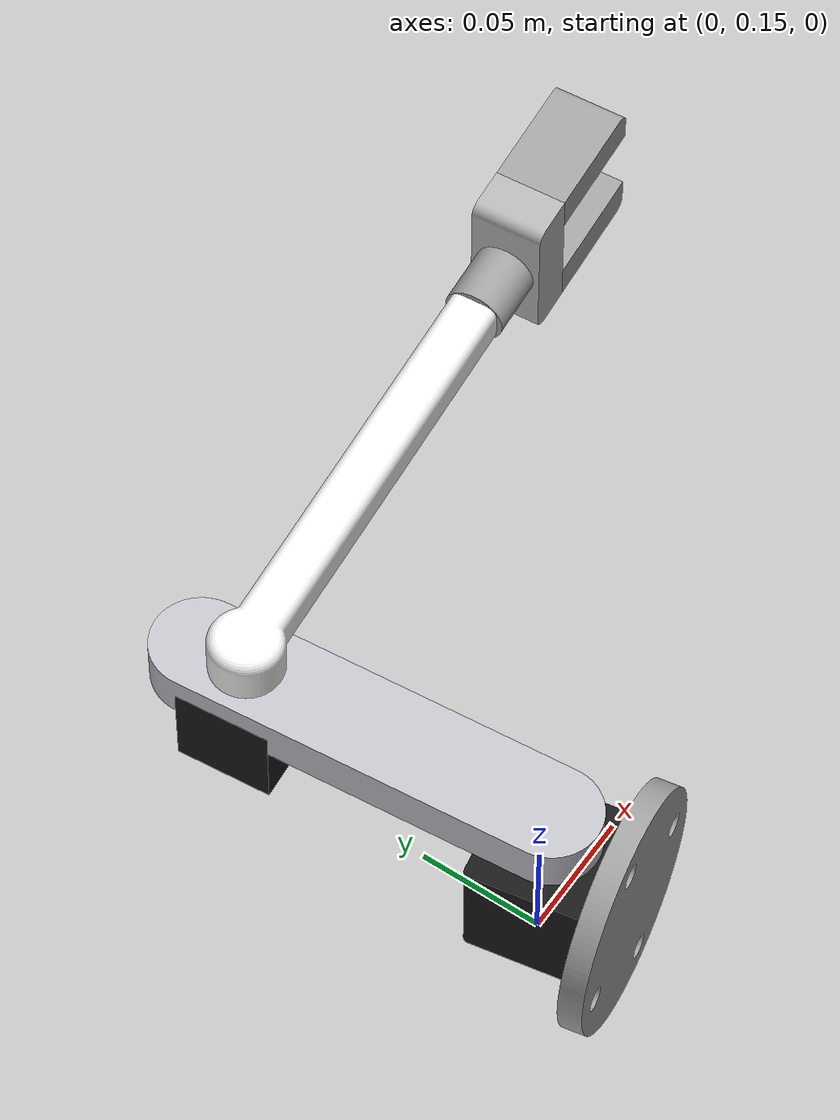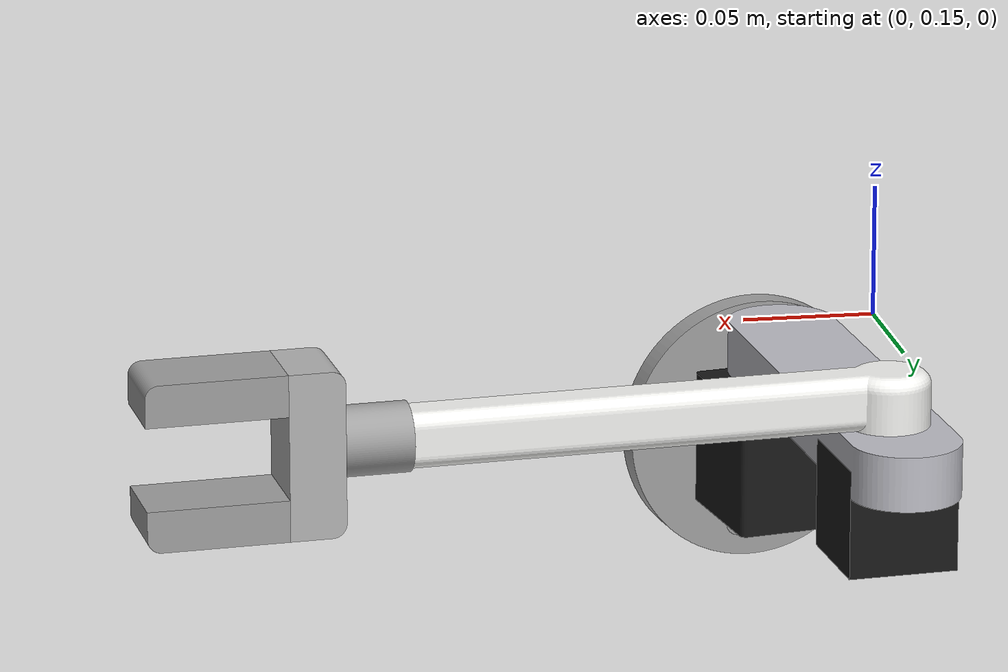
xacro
<?xml version="1.0" ?>
<robot name="arm" xmlns:xacro="http://www.ros.org/wiki/xacro">

<xacro:include filename="$(find arm_description)/urdf/materials.xacro" />
<xacro:include filename="$(find arm_description)/urdf/arm.trans" />
<xacro:include filename="$(find arm_description)/urdf/arm.gazebo" />
<link name="base_link">
  <inertial>
    <origin rpy="0 0 0" xyz="0.045004269594343685 0.14080314103611938 -0.04418171946780986"/>
    <mass value="0.5918760559363156"/>
    <inertia ixx="0.000384" ixy="-6.2e-05" ixz="0.0" iyy="0.000725" iyz="0.0" izz="0.000373"/>
  </inertial>
  <visual>
    <origin rpy="0 0 0" xyz="0 0 0"/>
    <geometry>
      <mesh filename="package://arm_description/meshes/base_link.stl" scale="0.001 0.001 0.001"/>
    </geometry>
    <material name="steel_satin"/>
  </visual>
  <collision>
    <origin rpy="0 0 0" xyz="0 0 0"/>
    <geometry>
      <mesh filename="package://arm_description/meshes/base_link.stl" scale="0.001 0.001 0.001"/>
    </geometry>
  </collision>
</link>

<link name="shoulder_v7_1">
  <inertial>
    <origin rpy="0 0 0" xyz="0.03979482426435912 0.17034737362648983 -0.05392380300504991"/>
    <mass value="0.17928408437421925"/>
    <inertia ixx="7.5e-05" ixy="-0.0" ixz="-0.0" iyy="7.5e-05" iyz="-0.0" izz="7.4e-05"/>
  </inertial>
  <visual>
    <origin rpy="0 0 0" xyz="-0.0 -0.0 -0.01"/>
    <geometry>
      <mesh filename="package://arm_description/meshes/shoulder_v7_1.stl" scale="0.001 0.001 0.001"/>
    </geometry>
    <material name="plastic_glossy_black"/>
  </visual>
  <collision>
    <origin rpy="0 0 0" xyz="-0.0 -0.0 -0.01"/>
    <geometry>
      <mesh filename="package://arm_description/meshes/shoulder_v7_1.stl" scale="0.001 0.001 0.001"/>
    </geometry>
  </collision>
</link>

<link name="elbow_v12_1">
  <inertial>
    <origin rpy="0 0 0" xyz="0.03384303335064815 0.2433766550652839 -0.003553644285581166"/>
    <mass value="0.13164405591331413"/>
    <inertia ixx="0.000352" ixy="2.9e-05" ixz="0.0" iyy="2.4e-05" iyz="-5e-06" izz="0.000367"/>
  </inertial>
  <visual>
    <origin rpy="0 0 0" xyz="-0.0 0.005 -0.0"/>
    <geometry>
      <mesh filename="package://arm_description/meshes/elbow_v12_1.stl" scale="0.001 0.001 0.001"/>
    </geometry>
    <material name="polystyrene"/>
  </visual>
  <collision>
    <origin rpy="0 0 0" xyz="-0.0 0.005 -0.0"/>
    <geometry>
      <mesh filename="package://arm_description/meshes/elbow_v12_1.stl" scale="0.001 0.001 0.001"/>
    </geometry>
  </collision>
</link>

<link name="stepper_motor_v4_1">
  <inertial>
    <origin rpy="0 0 0" xyz="-4.223186543181323e-07 -3.153265071831335e-07 -0.019816764371663013"/>
    <mass value="0.09175959619142068"/>
    <inertia ixx="2.5e-05" ixy="0.0" ixz="-0.0" iyy="2.5e-05" iyz="0.0" izz="2.4e-05"/>
  </inertial>
  <visual>
    <origin rpy="0 0 0" xyz="-0.028465 -0.299853 0.004182"/>
    <geometry>
      <mesh filename="package://arm_description/meshes/stepper_motor_v4_1.stl" scale="0.001 0.001 0.001"/>
    </geometry>
    <material name="plastic_glossy_black"/>
  </visual>
  <collision>
    <origin rpy="0 0 0" xyz="-0.028465 -0.299853 0.004182"/>
    <geometry>
      <mesh filename="package://arm_description/meshes/stepper_motor_v4_1.stl" scale="0.001 0.001 0.001"/>
    </geometry>
  </collision>
</link>

<link name="fist_v8_1">
  <inertial>
    <origin rpy="0 0 0" xyz="0.08545072429578468 0.2965880967939642 0.015786321919730437"/>
    <mass value="0.10436047216159268"/>
    <inertia ixx="9e-06" ixy="-2.8e-05" ixz="-0.0" iyy="0.000325" iyz="-0.0" izz="0.000328"/>
  </inertial>
  <visual>
    <origin rpy="0 0 0" xyz="-0.02 -0.01 -0.0"/>
    <geometry>
      <mesh filename="package://arm_description/meshes/fist_v8_1.stl" scale="0.001 0.001 0.001"/>
    </geometry>
    <material name="plastic_glossy_white"/>
  </visual>
  <collision>
    <origin rpy="0 0 0" xyz="-0.02 -0.01 -0.0"/>
    <geometry>
      <mesh filename="package://arm_description/meshes/fist_v8_1.stl" scale="0.001 0.001 0.001"/>
    </geometry>
  </collision>
</link>

<link name="left_claw_v2_1">
  <inertial>
    <origin rpy="0 0 0" xyz="0.02473385694239269 0.0021638438876491195 -4.570971836950072e-05"/>
    <mass value="0.17536153168700247"/>
    <inertia ixx="1.7e-05" ixy="-2e-06" ixz="0.0" iyy="3.9e-05" iyz="0.0" izz="4.9e-05"/>
  </inertial>
  <visual>
    <origin rpy="0 0 0" xyz="-0.247627 -0.319027 -0.038318"/>
    <geometry>
      <mesh filename="package://arm_description/meshes/left_claw_v2_1.stl" scale="0.001 0.001 0.001"/>
    </geometry>
    <material name="steel_satin"/>
  </visual>
  <collision>
    <origin rpy="0 0 0" xyz="-0.247627 -0.319027 -0.038318"/>
    <geometry>
      <mesh filename="package://arm_description/meshes/left_claw_v2_1.stl" scale="0.001 0.001 0.001"/>
    </geometry>
  </collision>
</link>

<link name="right_claw_v2_1">
  <inertial>
    <origin rpy="0 0 0" xyz="0.0247338569423923 0.0021638438876509514 4.627078276895746e-05"/>
    <mass value="0.17536153168700244"/>
    <inertia ixx="1.7e-05" ixy="-2e-06" ixz="-0.0" iyy="3.9e-05" iyz="-0.0" izz="4.9e-05"/>
  </inertial>
  <visual>
    <origin rpy="0 0 0" xyz="-0.247627 -0.319027 0.006682"/>
    <geometry>
      <mesh filename="package://arm_description/meshes/right_claw_v2_1.stl" scale="0.001 0.001 0.001"/>
    </geometry>
    <material name="steel_satin"/>
  </visual>
  <collision>
    <origin rpy="0 0 0" xyz="-0.247627 -0.319027 0.006682"/>
    <geometry>
      <mesh filename="package://arm_description/meshes/right_claw_v2_1.stl" scale="0.001 0.001 0.001"/>
    </geometry>
  </collision>
</link>

<link name="dc_motor_v3_1">
  <inertial>
    <origin rpy="0 0 0" xyz="0.0124520835993647 0.0010893861436002128 2.8053219981727384e-07"/>
    <mass value="0.09633399347921827"/>
    <inertia ixx="8e-06" ixy="-0.0" ixz="0.0" iyy="9e-06" iyz="-0.0" izz="9e-06"/>
  </inertial>
  <visual>
    <origin rpy="0 0 0" xyz="-0.202799 -0.315105 -0.015818"/>
    <geometry>
      <mesh filename="package://arm_description/meshes/dc_motor_v3_1.stl" scale="0.001 0.001 0.001"/>
    </geometry>
    <material name="steel_satin"/>
  </visual>
  <collision>
    <origin rpy="0 0 0" xyz="-0.202799 -0.315105 -0.015818"/>
    <geometry>
      <mesh filename="package://arm_description/meshes/dc_motor_v3_1.stl" scale="0.001 0.001 0.001"/>
    </geometry>
  </collision>
</link>

<link name="eef_v4_1">
  <inertial>
    <origin rpy="0 0 0" xyz="0.037745306918037874 0.3081623756788047 0.015818280532200014"/>
    <mass value="0.03189621893711599"/>
    <inertia ixx="1.2e-05" ixy="0.0" ixz="-0.0" iyy="1e-05" iyz="0.0" izz="3e-06"/>
  </inertial>
  <visual>
    <origin rpy="0 0 0" xyz="-0.2 -0.01 -0.0"/>
    <geometry>
      <mesh filename="package://arm_description/meshes/eef_v4_1.stl" scale="0.001 0.001 0.001"/>
    </geometry>
    <material name="surface_matte"/>
  </visual>
  <collision>
    <origin rpy="0 0 0" xyz="-0.2 -0.01 -0.0"/>
    <geometry>
      <mesh filename="package://arm_description/meshes/eef_v4_1.stl" scale="0.001 0.001 0.001"/>
    </geometry>
  </collision>
</link>

<joint name="Rev1" type="continuous">
  <origin rpy="0 0 0" xyz="0.0 0.0 0.01"/>
  <parent link="base_link"/>
  <child link="shoulder_v7_1"/>
  <axis xyz="-0.173648 0.984808 0.0"/>
</joint>

<joint name="Rev2" type="continuous">
  <origin rpy="0 0 0" xyz="0.0 -0.005 -0.01"/>
  <parent link="shoulder_v7_1"/>
  <child link="elbow_v12_1"/>
  <axis xyz="0.0 -0.0 1.0"/>
</joint>

<joint name="Rigid3" type="fixed">
  <origin rpy="0 0 0" xyz="0.028465 0.304853 -0.004182"/>
  <parent link="elbow_v12_1"/>
  <child link="stepper_motor_v4_1"/>
</joint>

<joint name="Rev4" type="continuous">
  <origin rpy="0 0 0" xyz="-0.008465 -0.289853 0.004182"/>
  <parent link="stepper_motor_v4_1"/>
  <child link="fist_v8_1"/>
  <axis xyz="0.0 -0.0 1.0"/>
</joint>

<joint name="Slider6" type="prismatic">
  <origin rpy="0 0 0" xyz="0.047627 0.309027 0.038318"/>
  <parent link="eef_v4_1"/>
  <child link="left_claw_v2_1"/>
  <axis xyz="-0.0 0.0 -1.0"/>
  <limit effort="100" lower="0.0" upper="0.0" velocity="100"/>
</joint>

<joint name="Slider7" type="prismatic">
  <origin rpy="0 0 0" xyz="0.047627 0.309027 -0.006682"/>
  <parent link="eef_v4_1"/>
  <child link="right_claw_v2_1"/>
  <axis xyz="-0.0 0.0 -1.0"/>
  <limit effort="100" lower="0.0" upper="0.0" velocity="100"/>
</joint>

<joint name="Rigid8" type="fixed">
  <origin rpy="0 0 0" xyz="0.182799 0.305105 0.015818"/>
  <parent link="fist_v8_1"/>
  <child link="dc_motor_v3_1"/>
</joint>

<joint name="Rev9" type="continuous">
  <origin rpy="0 0 0" xyz="-0.002799 -0.305105 -0.015818"/>
  <parent link="dc_motor_v3_1"/>
  <child link="eef_v4_1"/>
  <axis xyz="0.996195 0.087156 -0.0"/>
</joint>

</robot>

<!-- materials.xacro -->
<robot name="arm" xmlns:xacro="http://www.ros.org/wiki/xacro" >

<material name="silver_default">
  <color rgba="0.700 0.700 0.700 1.000"/>
</material>
<material name="steel_satin">
  <color rgba="0.6274509803921569 0.6274509803921569 0.6274509803921569 1.0"/>
</material>
<material name="plastic_glossy_black">
  <color rgba="0.09803921568627451 0.09803921568627451 0.09803921568627451 1.0"/>
</material>
<material name="plastic_glossy_white">
  <color rgba="0.9647058823529412 0.9647058823529412 0.9529411764705882 1.0"/>
</material>
<material name="surface_matte">
  <color rgba="0.7019607843137254 0.7019607843137254 0.7019607843137254 1.0"/>
</material>

</robot>

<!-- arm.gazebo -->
<robot name="arm" xmlns:xacro="http://www.ros.org/wiki/xacro" >

<xacro:property name="body_color" value="Gazebo/Silver" />

<gazebo>
  <plugin filename="libgazebo_ros_control.so" name="control"/>
</gazebo>
<gazebo reference="base_link">
  <material>${body_color}</material>
  <mu1>0.2</mu1>
  <mu2>0.2</mu2>
  <selfCollide>true</selfCollide>
  <gravity>true</gravity>
</gazebo>

<gazebo reference="shoulder_v7_1">
  <material>${body_color}</material>
  <mu1>0.2</mu1>
  <mu2>0.2</mu2>
  <selfCollide>true</selfCollide>
</gazebo>

<gazebo reference="elbow_v12_1">
  <material>${body_color}</material>
  <mu1>0.2</mu1>
  <mu2>0.2</mu2>
  <selfCollide>true</selfCollide>
</gazebo>

<gazebo reference="stepper_motor_v4_1">
  <material>${body_color}</material>
  <mu1>0.2</mu1>
  <mu2>0.2</mu2>
  <selfCollide>true</selfCollide>
</gazebo>

<gazebo reference="fist_v8_1">
  <material>${body_color}</material>
  <mu1>0.2</mu1>
  <mu2>0.2</mu2>
  <selfCollide>true</selfCollide>
</gazebo>

<gazebo reference="left_claw_v2_1">
  <material>${body_color}</material>
  <mu1>0.2</mu1>
  <mu2>0.2</mu2>
  <selfCollide>true</selfCollide>
</gazebo>

<gazebo reference="right_claw_v2_1">
  <material>${body_color}</material>
  <mu1>0.2</mu1>
  <mu2>0.2</mu2>
  <selfCollide>true</selfCollide>
</gazebo>

<gazebo reference="dc_motor_v3_1">
  <material>${body_color}</material>
  <mu1>0.2</mu1>
  <mu2>0.2</mu2>
  <selfCollide>true</selfCollide>
</gazebo>

<gazebo reference="eef_v4_1">
  <material>${body_color}</material>
  <mu1>0.2</mu1>
  <mu2>0.2</mu2>
  <selfCollide>true</selfCollide>
</gazebo>

</robot>
